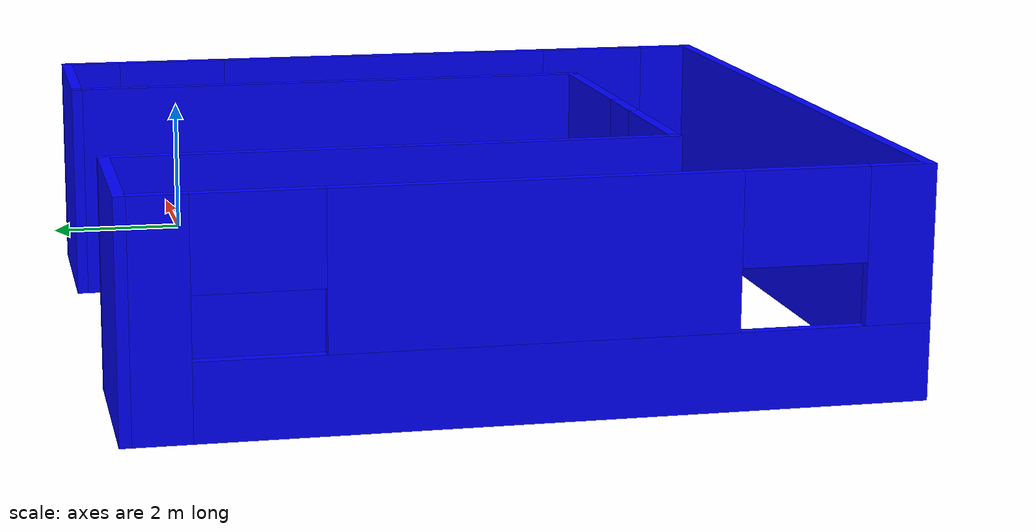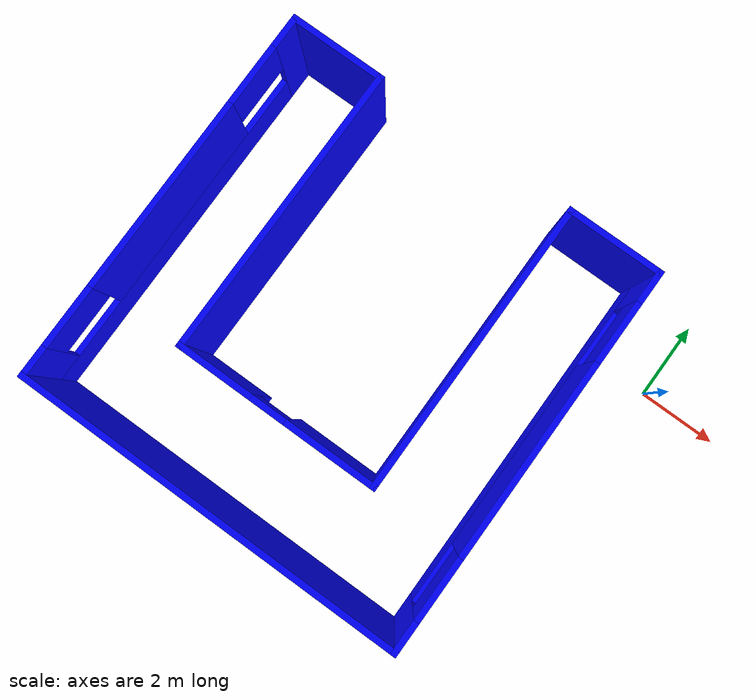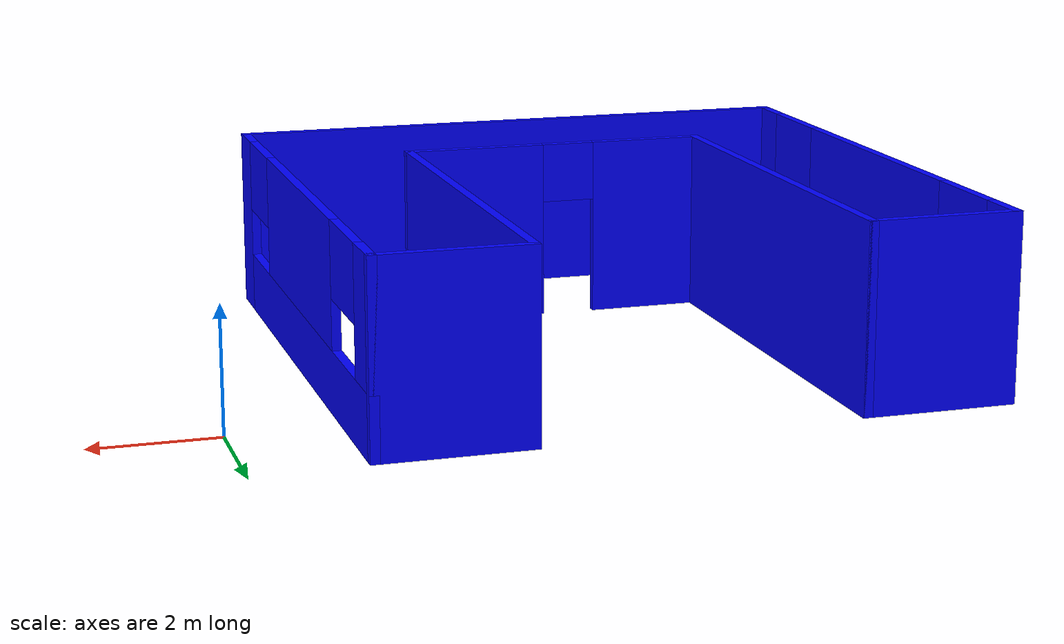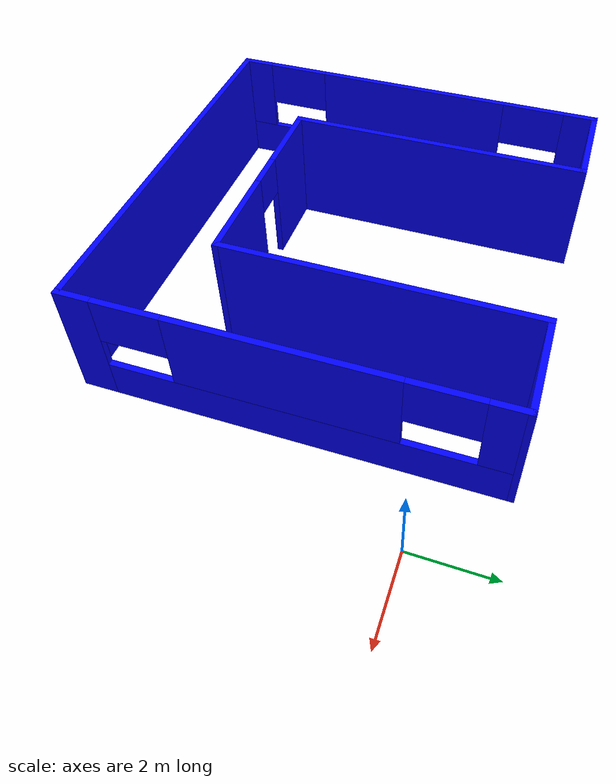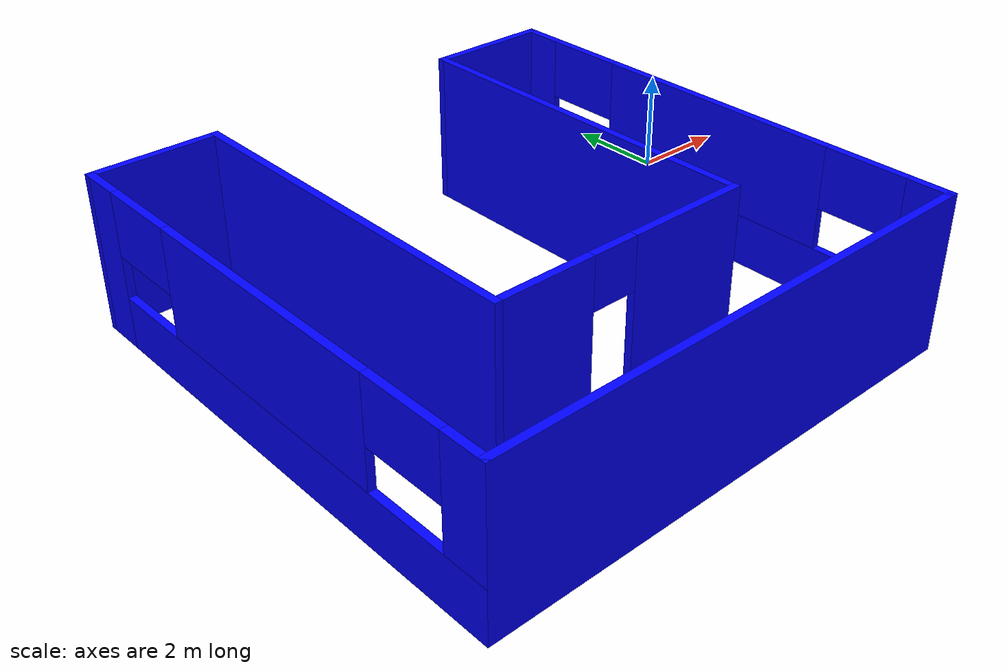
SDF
<?xml version='1.0'?>
<sdf version='1.6'>
  <model name='mybuilding'>
    <pose frame=''>-6.729 -3.105 0 0 -0 0</pose>
    <link name='Wall_10'>
      <pose frame=''>-4.925 0 0 0 0 -1.5708</pose>
      <visual name='Wall_10_Visual_0'>
        <pose frame=''>-4.56353 0 1.5 0 -0 0</pose>
        <geometry>
          <box>
            <size>0.872936 0.15 3</size>
          </box>
        </geometry>
        <material>
          <script>
            <uri>file://media/materials/scripts/gazebo.material</uri>
            <name>Gazebo/Grey</name>
          </script>
          <ambient>0 0 1 1</ambient>
        </material>
        <meta>
          <layer>0</layer>
        </meta>
      </visual>
      <collision name='Wall_10_Collision_0'>
        <geometry>
          <box>
            <size>0.872936 0.15 3</size>
          </box>
        </geometry>
        <pose frame=''>-4.56353 0 1.5 0 -0 0</pose>
      </collision>
      <visual name='Wall_10_Visual_1'>
        <pose frame=''>0.436468 0 0.5 0 -0 0</pose>
        <geometry>
          <box>
            <size>9.12706 0.15 1</size>
          </box>
        </geometry>
        <material>
          <script>
            <uri>file://media/materials/scripts/gazebo.material</uri>
            <name>Gazebo/Grey</name>
          </script>
          <ambient>0 0 1 1</ambient>
        </material>
        <meta>
          <layer>0</layer>
        </meta>
      </visual>
      <collision name='Wall_10_Collision_1'>
        <geometry>
          <box>
            <size>9.12706 0.15 1</size>
          </box>
        </geometry>
        <pose frame=''>0.436468 0 0.5 0 -0 0</pose>
      </collision>
      <visual name='Wall_10_Visual_2'>
        <pose frame=''>0.011261 0 2 0 -0 0</pose>
        <geometry>
          <box>
            <size>5.07665 0.15 2</size>
          </box>
        </geometry>
        <material>
          <script>
            <uri>file://media/materials/scripts/gazebo.material</uri>
            <name>Gazebo/Grey</name>
          </script>
          <ambient>0 0 1 1</ambient>
        </material>
        <meta>
          <layer>0</layer>
        </meta>
      </visual>
      <collision name='Wall_10_Collision_2'>
        <geometry>
          <box>
            <size>5.07665 0.15 2</size>
          </box>
        </geometry>
        <pose frame=''>0.011261 0 2 0 -0 0</pose>
      </collision>
      <visual name='Wall_10_Visual_3'>
        <pose frame=''>4.57479 0 2 0 -0 0</pose>
        <geometry>
          <box>
            <size>0.850414 0.15 2</size>
          </box>
        </geometry>
        <material>
          <script>
            <uri>file://media/materials/scripts/gazebo.material</uri>
            <name>Gazebo/Grey</name>
          </script>
          <ambient>0 0 1 1</ambient>
        </material>
        <meta>
          <layer>0</layer>
        </meta>
      </visual>
      <collision name='Wall_10_Collision_3'>
        <geometry>
          <box>
            <size>0.850414 0.15 2</size>
          </box>
        </geometry>
        <pose frame=''>4.57479 0 2 0 -0 0</pose>
      </collision>
      <visual name='Wall_10_Visual_4'>
        <pose frame=''>-3.32706 0 2.4 0 -0 0</pose>
        <geometry>
          <box>
            <size>1.6 0.15 1.2</size>
          </box>
        </geometry>
        <material>
          <script>
            <uri>file://media/materials/scripts/gazebo.material</uri>
            <name>Gazebo/Grey</name>
          </script>
          <ambient>0 0 1 1</ambient>
        </material>
        <meta>
          <layer>0</layer>
        </meta>
      </visual>
      <collision name='Wall_10_Collision_4'>
        <geometry>
          <box>
            <size>1.6 0.15 1.2</size>
          </box>
        </geometry>
        <pose frame=''>-3.32706 0 2.4 0 -0 0</pose>
      </collision>
      <visual name='Wall_10_Visual_5'>
        <pose frame=''>3.34959 0 2.4 0 -0 0</pose>
        <geometry>
          <box>
            <size>1.6 0.15 1.2</size>
          </box>
        </geometry>
        <material>
          <script>
            <uri>file://media/materials/scripts/gazebo.material</uri>
            <name>Gazebo/Grey</name>
          </script>
          <ambient>0 0 1 1</ambient>
        </material>
        <meta>
          <layer>0</layer>
        </meta>
      </visual>
      <collision name='Wall_10_Collision_5'>
        <geometry>
          <box>
            <size>1.6 0.15 1.2</size>
          </box>
        </geometry>
        <pose frame=''>3.34959 0 2.4 0 -0 0</pose>
      </collision>
    </link>
    <link name='Wall_11'>
      <collision name='Wall_11_Collision'>
        <geometry>
          <box>
            <size>10 0.15 3</size>
          </box>
        </geometry>
        <pose frame=''>0 0 1.5 0 -0 0</pose>
      </collision>
      <visual name='Wall_11_Visual'>
        <pose frame=''>0 0 1.5 0 -0 0</pose>
        <geometry>
          <box>
            <size>10 0.15 3</size>
          </box>
        </geometry>
        <material>
          <script>
            <uri>file://media/materials/scripts/gazebo.material</uri>
            <name>Gazebo/Grey</name>
          </script>
          <ambient>0 0 1 1</ambient>
        </material>
        <meta>
          <layer>0</layer>
        </meta>
      </visual>
      <pose frame=''>0 -4.925 0 0 -0 0</pose>
    </link>
    <link name='Wall_12'>
      <pose frame=''>4.925 0 0 0 -0 1.5708</pose>
      <visual name='Wall_12_Visual_0'>
        <pose frame=''>-4.57479 0 1.5 0 -0 0</pose>
        <geometry>
          <box>
            <size>0.850414 0.15 3</size>
          </box>
        </geometry>
        <material>
          <script>
            <uri>file://media/materials/scripts/gazebo.material</uri>
            <name>Gazebo/Grey</name>
          </script>
          <ambient>0 0 1 1</ambient>
        </material>
        <meta>
          <layer>0</layer>
        </meta>
      </visual>
      <collision name='Wall_12_Collision_0'>
        <geometry>
          <box>
            <size>0.850414 0.15 3</size>
          </box>
        </geometry>
        <pose frame=''>-4.57479 0 1.5 0 -0 0</pose>
      </collision>
      <visual name='Wall_12_Visual_1'>
        <pose frame=''>0.425207 0 0.5 0 -0 0</pose>
        <geometry>
          <box>
            <size>9.14959 0.15 1</size>
          </box>
        </geometry>
        <material>
          <script>
            <uri>file://media/materials/scripts/gazebo.material</uri>
            <name>Gazebo/Grey</name>
          </script>
          <ambient>0 0 1 1</ambient>
        </material>
        <meta>
          <layer>0</layer>
        </meta>
      </visual>
      <collision name='Wall_12_Collision_1'>
        <geometry>
          <box>
            <size>9.14959 0.15 1</size>
          </box>
        </geometry>
        <pose frame=''>0.425207 0 0.5 0 -0 0</pose>
      </collision>
      <visual name='Wall_12_Visual_2'>
        <pose frame=''>-0.011261 0 2 0 -0 0</pose>
        <geometry>
          <box>
            <size>5.07665 0.15 2</size>
          </box>
        </geometry>
        <material>
          <script>
            <uri>file://media/materials/scripts/gazebo.material</uri>
            <name>Gazebo/Grey</name>
          </script>
          <ambient>0 0 1 1</ambient>
        </material>
        <meta>
          <layer>0</layer>
        </meta>
      </visual>
      <collision name='Wall_12_Collision_2'>
        <geometry>
          <box>
            <size>5.07665 0.15 2</size>
          </box>
        </geometry>
        <pose frame=''>-0.011261 0 2 0 -0 0</pose>
      </collision>
      <visual name='Wall_12_Visual_3'>
        <pose frame=''>4.56353 0 2 0 -0 0</pose>
        <geometry>
          <box>
            <size>0.872936 0.15 2</size>
          </box>
        </geometry>
        <material>
          <script>
            <uri>file://media/materials/scripts/gazebo.material</uri>
            <name>Gazebo/Grey</name>
          </script>
          <ambient>0 0 1 1</ambient>
        </material>
        <meta>
          <layer>0</layer>
        </meta>
      </visual>
      <collision name='Wall_12_Collision_3'>
        <geometry>
          <box>
            <size>0.872936 0.15 2</size>
          </box>
        </geometry>
        <pose frame=''>4.56353 0 2 0 -0 0</pose>
      </collision>
      <visual name='Wall_12_Visual_4'>
        <pose frame=''>-3.34959 0 2.4 0 -0 0</pose>
        <geometry>
          <box>
            <size>1.6 0.15 1.2</size>
          </box>
        </geometry>
        <material>
          <script>
            <uri>file://media/materials/scripts/gazebo.material</uri>
            <name>Gazebo/Grey</name>
          </script>
          <ambient>0 0 1 1</ambient>
        </material>
        <meta>
          <layer>0</layer>
        </meta>
      </visual>
      <collision name='Wall_12_Collision_4'>
        <geometry>
          <box>
            <size>1.6 0.15 1.2</size>
          </box>
        </geometry>
        <pose frame=''>-3.34959 0 2.4 0 -0 0</pose>
      </collision>
      <visual name='Wall_12_Visual_5'>
        <pose frame=''>3.32706 0 2.4 0 -0 0</pose>
        <geometry>
          <box>
            <size>1.6 0.15 1.2</size>
          </box>
        </geometry>
        <material>
          <script>
            <uri>file://media/materials/scripts/gazebo.material</uri>
            <name>Gazebo/Grey</name>
          </script>
          <ambient>0 0 1 1</ambient>
        </material>
        <meta>
          <layer>0</layer>
        </meta>
      </visual>
      <collision name='Wall_12_Collision_5'>
        <geometry>
          <box>
            <size>1.6 0.15 1.2</size>
          </box>
        </geometry>
        <pose frame=''>3.32706 0 2.4 0 -0 0</pose>
      </collision>
    </link>
    <link name='Wall_13'>
      <collision name='Wall_13_Collision'>
        <geometry>
          <box>
            <size>2.5 0.15 3</size>
          </box>
        </geometry>
        <pose frame=''>0 0 1.5 0 -0 0</pose>
      </collision>
      <visual name='Wall_13_Visual'>
        <pose frame=''>0 0 1.5 0 -0 0</pose>
        <geometry>
          <box>
            <size>2.5 0.15 3</size>
          </box>
        </geometry>
        <material>
          <script>
            <uri>file://media/materials/scripts/gazebo.material</uri>
            <name>Gazebo/Grey</name>
          </script>
          <ambient>0 0 1 1</ambient>
        </material>
        <meta>
          <layer>0</layer>
        </meta>
      </visual>
      <pose frame=''>3.75 4.925 0 0 -0 3.14159</pose>
    </link>
    <link name='Wall_15'>
      <collision name='Wall_15_Collision'>
        <geometry>
          <box>
            <size>7.5 0.15 3</size>
          </box>
        </geometry>
        <pose frame=''>0 0 1.5 0 -0 0</pose>
      </collision>
      <visual name='Wall_15_Visual'>
        <pose frame=''>0 0 1.5 0 -0 0</pose>
        <geometry>
          <box>
            <size>7.5 0.15 3</size>
          </box>
        </geometry>
        <material>
          <script>
            <uri>file://media/materials/scripts/gazebo.material</uri>
            <name>Gazebo/Grey</name>
          </script>
          <ambient>0 0 1 1</ambient>
        </material>
        <meta>
          <layer>0</layer>
        </meta>
      </visual>
      <pose frame=''>-2.575 1.25 0 0 0 -1.5708</pose>
    </link>
    <link name='Wall_19'>
      <collision name='Wall_19_Collision'>
        <geometry>
          <box>
            <size>7.5 0.15 3</size>
          </box>
        </geometry>
        <pose frame=''>0 0 1.5 0 -0 0</pose>
      </collision>
      <visual name='Wall_19_Visual'>
        <pose frame=''>0 0 1.5 0 -0 0</pose>
        <geometry>
          <box>
            <size>7.5 0.15 3</size>
          </box>
        </geometry>
        <material>
          <script>
            <uri>file://media/materials/scripts/gazebo.material</uri>
            <name>Gazebo/Grey</name>
          </script>
          <ambient>0 0 1 1</ambient>
        </material>
        <meta>
          <layer>0</layer>
        </meta>
      </visual>
      <pose frame=''>2.575 1.25 0 0 0 -1.5708</pose>
    </link>
    <link name='Wall_20'>
      <pose frame=''>0 -2.425 0 0 -0 3.14159</pose>
      <visual name='Wall_20_Visual_0'>
        <pose frame=''>-1.43729 0 1.5 0 -0 0</pose>
        <geometry>
          <box>
            <size>2.42543 0.15 3</size>
          </box>
        </geometry>
        <material>
          <script>
            <uri>file://media/materials/scripts/gazebo.material</uri>
            <name>Gazebo/Grey</name>
          </script>
          <ambient>0 0 1 1</ambient>
        </material>
        <meta>
          <layer>0</layer>
        </meta>
      </visual>
      <collision name='Wall_20_Collision_0'>
        <geometry>
          <box>
            <size>2.42543 0.15 3</size>
          </box>
        </geometry>
        <pose frame=''>-1.43729 0 1.5 0 -0 0</pose>
      </collision>
      <visual name='Wall_20_Visual_1'>
        <pose frame=''>1.66271 0 1.5 0 -0 0</pose>
        <geometry>
          <box>
            <size>1.97457 0.15 3</size>
          </box>
        </geometry>
        <material>
          <script>
            <uri>file://media/materials/scripts/gazebo.material</uri>
            <name>Gazebo/Grey</name>
          </script>
          <ambient>0 0 1 1</ambient>
        </material>
        <meta>
          <layer>0</layer>
        </meta>
      </visual>
      <collision name='Wall_20_Collision_1'>
        <geometry>
          <box>
            <size>1.97457 0.15 3</size>
          </box>
        </geometry>
        <pose frame=''>1.66271 0 1.5 0 -0 0</pose>
      </collision>
      <visual name='Wall_20_Visual_2'>
        <pose frame=''>0.225428 0 2.5 0 -0 0</pose>
        <geometry>
          <box>
            <size>0.9 0.15 1</size>
          </box>
        </geometry>
        <material>
          <script>
            <uri>file://media/materials/scripts/gazebo.material</uri>
            <name>Gazebo/Grey</name>
          </script>
          <ambient>0 0 1 1</ambient>
        </material>
        <meta>
          <layer>0</layer>
        </meta>
      </visual>
      <collision name='Wall_20_Collision_2'>
        <geometry>
          <box>
            <size>0.9 0.15 1</size>
          </box>
        </geometry>
        <pose frame=''>0.225428 0 2.5 0 -0 0</pose>
      </collision>
    </link>
    <link name='Wall_4'>
      <collision name='Wall_4_Collision'>
        <geometry>
          <box>
            <size>2.5 0.15 3</size>
          </box>
        </geometry>
        <pose frame=''>0 0 1.5 0 -0 0</pose>
      </collision>
      <visual name='Wall_4_Visual'>
        <pose frame=''>0 0 1.5 0 -0 0</pose>
        <geometry>
          <box>
            <size>2.5 0.15 3</size>
          </box>
        </geometry>
        <material>
          <script>
            <uri>file://media/materials/scripts/gazebo.material</uri>
            <name>Gazebo/Grey</name>
          </script>
          <ambient>0 0 1 1</ambient>
        </material>
        <meta>
          <layer>0</layer>
        </meta>
      </visual>
      <pose frame=''>-3.75 4.925 0 0 -0 0</pose>
    </link>
    <static>1</static>
  </model>
</sdf>
